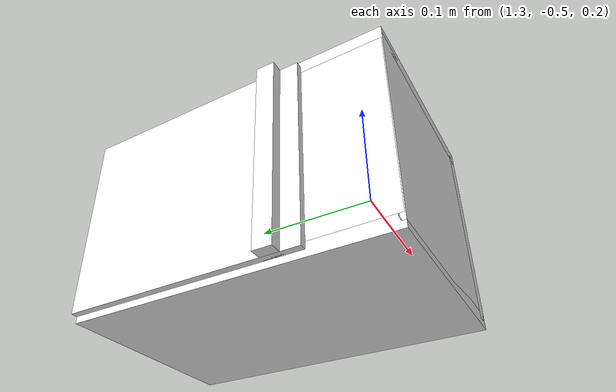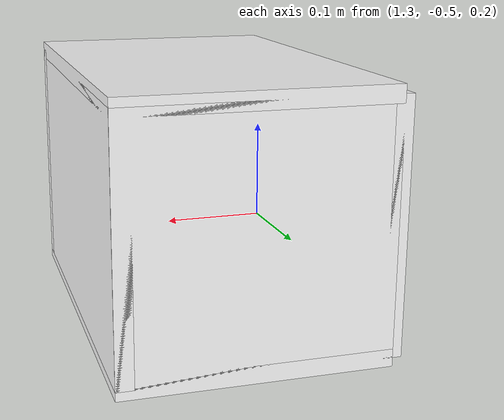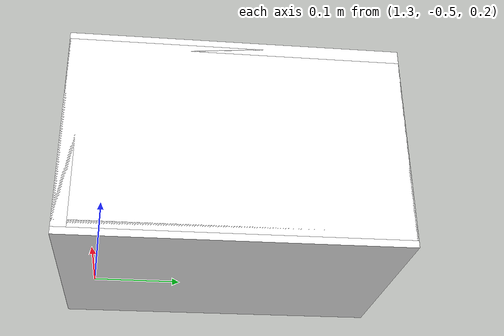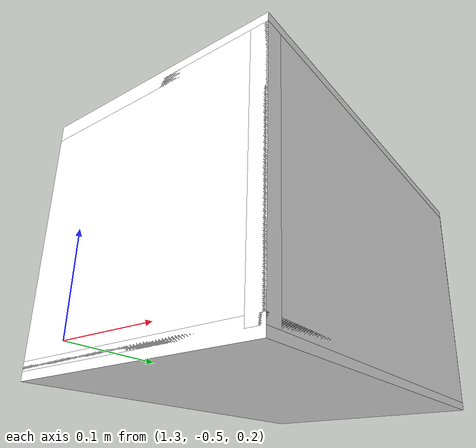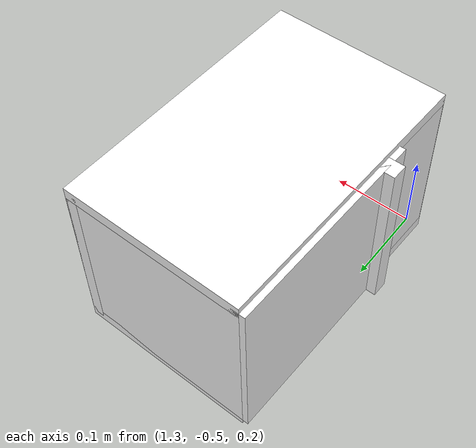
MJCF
<mujoco model="cabinet">
    <compiler angle="radian" eulerseq='zxy' />
    <option gravity = "0 0 0" />
    <option>
        <flag contact = "disable"/>
    </option>
    <statistic	extent="1.0" center="0.0 0.0 0.0"/>
    <visual>
        <map fogstart="3" fogend="5" force="0.1" znear=" 0.100000 " zfar=" 12.000000 "/>
    </visual>
    <size njmax="500" nconmax="100" />
    <actuator>
        <velocity joint="bottom_left_hinge" name="viva_revolution" kv='10'></velocity>
    </actuator>
    <asset>
        <texture builtin="flat" name="tabletex" height="32" width="32" rgb1="1 1 1" type="cube"></texture>
        <texture builtin="flat" name="objtex" height="32" width="32" rgb1="1 1 1" type="cube"></texture>
        <texture builtin="flat" name="handletex" height="32" width="32" rgb1="1 1 1" type="cube"></texture>
        <texture builtin="flat" name="wallpaper" height="32" width="32" rgb1="1 0 0" type="cube"></texture>
        <texture builtin="flat" name="kp" height="32" width="32" rgb1="1 1 1" type="cube"></texture>
        <material name="geomTable" shininess="0.03" specular="0.75" texture="tabletex"></material>
        <material name="geomObj" shininess="0.03" specular="0.75" texture="objtex"></material>
        <material name="geomHandle" shininess="0.03" specular="0.75" texture="handletex"></material>
        <material name="ax" shininess="0.03" specular="0.75" texture="wallpaper"></material>
        <material name="bg" shininess="0.03" specular="0.75" texture="wallpaper"></material>
        <material name="geomKeypad" shininess="0.03" specular="0.75" texture="kp"></material>
    </asset>
    <worldbody>
        <body name="cabinet_bottom" pos= " 1.411412 -0.355809 0.170825 "  quat= " 0.009069 0.000000 0.000000 0.999959" >
            <inertial pos="0 0 0" mass="1" diaginertia="1 1 1" />
            <geom size= " 0.112562 0.174622 0.007479 "  type="box" material="geomObj" name="b"/>
            <body name="cabinet_left" pos= " 0.000000 -0.167143 0.106551 " >
                <inertial pos="0 0 0" mass="1" diaginertia="1 1 1" />
                <geom size= " 0.112562 0.007479 0.106551 "  type="box" material="geomObj" name="c" />
            </body>
            <body name="cabinet_right" pos= " 0.000000 0.167143 0.106551 " >
                <inertial pos="0 0 0" mass="1" diaginertia="1 1 1" />
                <geom size= " 0.112562 0.007479 0.106551 "  type="box" material="geomObj" name="d" />
            </body>
            <body name="cabinet_top" pos= " 0.000000 0.000000 0.213101 " >
                <inertial pos="0 0 0" mass="1" diaginertia="1 1 1" />
                <geom size= " 0.112562 0.174622 0.007479 "  type="box" material="geomObj" name="e"/>
            </body>
            <body name="cabinet_back" pos= " -0.105083 0.000000 0.106551 "  >
                <inertial pos="0 0 0" mass="1" diaginertia="1 1 1" />
                <geom size= " 0.007479 0.174622 0.106551 "  type="box" material="geomObj" name="f" />
            </body>
            <body name="cabinet_keypad" pos= " 0.007479 0.129966 0.106551 " >
                <inertial pos="0 0 0" mass="1" diaginertia="1 1 1" />
                <geom size= " 0.105083 0.043655 0.099071 "  type="box" material="geomKeypad" name="keypizzlemynizzle" />
            </body>
            <body name="cabinet_left_hinge" pos= " 0.112562 -0.174622 0.106551 " >
                <inertial pos= " 0.000000 0.130966 0.000000 "  mass="1" diaginertia="1 1 1" />
                <joint name="bottom_left_hinge" type="hinge" pos="0 0 0" axis="0 0 1" limited="true" range= "-2.3 0"  />
                <geom size= " 0.007479 0.130966 0.106551 "  pos= " 0.000000 0.130966 0.000000 "  type="box" material="geomObj" name="g"/>
                <body name="handle_link" pos= " 0.010000 0.231933 0.000000 " >
                    <inertial pos="0 0 0" mass="1" diaginertia="1 1 1" />
                    <geom size= " 0.010000 0.010000 0.106551 "  type="box" material="geomHandle" name="h"/>
                </body>
            </body>
        </body>
        <body name="external_camera_body_0" pos="0.0 0 0.00" >
            <camera euler="-1.57 1.57 0.0" fovy=" 54.280851 " name="external_camera_0" pos="0.0 0 0"></camera>
            <inertial pos= " 0.00 0.0 0.000000 " mass="1" diaginertia="1 1 1" />
            <joint name="cam_j" pos="0.0 0 0" axis = "1 0 0" type="free" />
        </body>
    </worldbody>
</mujoco>
